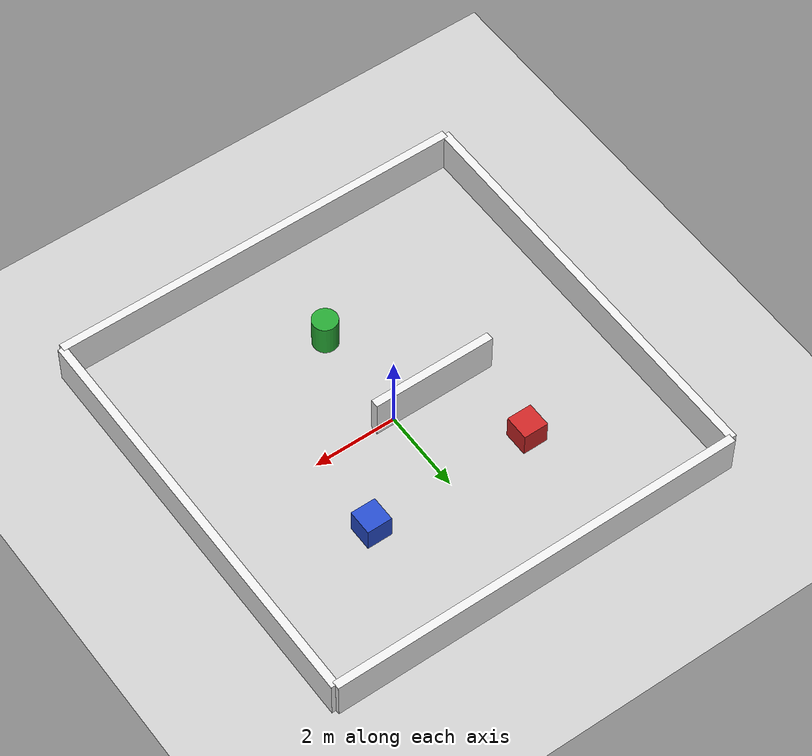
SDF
<?xml version="1.0" ?>
<sdf version="1.6">
  <world name="slam_world">

    <!-- Physics -->
    <physics type="ode">
      <real_time_update_rate>1000.0</real_time_update_rate>
      <max_step_size>0.001</max_step_size>
      <real_time_factor>1</real_time_factor>
    </physics>

    <!-- Plugins -->
    <plugin filename="libgazebo_ros_init.so"       name="gazebo_ros_init"/>
    <plugin filename="libgazebo_ros_factory.so"    name="gazebo_ros_factory"/>
    <plugin filename="libgazebo_ros_state.so"      name="gazebo_ros_state"/>

    <!-- Lighting -->
    <light name="sun" type="directional">
      <cast_shadows>true</cast_shadows>
      <pose>0 0 10 0 0 0</pose>
      <diffuse>0.8 0.8 0.8 1</diffuse>
      <specular>0.2 0.2 0.2 1</specular>
      <direction>-0.5 0.1 -0.9</direction>
    </light>

    <!-- Ground plane -->
    <model name="ground_plane">
      <static>true</static>
      <link name="link">
        <collision name="collision">
          <geometry><plane><normal>0 0 1</normal><size>100 100</size></plane></geometry>
        </collision>
        <visual name="visual">
          <geometry><plane><normal>0 0 1</normal><size>100 100</size></plane></geometry>
          <material>
            <script>
              <uri>file://media/materials/scripts/gazebo.material</uri>
              <name>Gazebo/Grey</name>
            </script>
          </material>
        </visual>
      </link>
    </model>

    <!-- ======  ROOM WALLS  ====== -->
    <!-- North wall -->
    <model name="wall_north">
      <static>true</static>
      <pose>0 5 0.5 0 0 0</pose>
      <link name="link">
        <collision name="collision"><geometry><box><size>10 0.2 1.0</size></box></geometry></collision>
        <visual name="visual">
          <geometry><box><size>10 0.2 1.0</size></box></geometry>
          <material><script><uri>file://media/materials/scripts/gazebo.material</uri><name>Gazebo/White</name></script></material>
        </visual>
      </link>
    </model>

    <!-- South wall -->
    <model name="wall_south">
      <static>true</static>
      <pose>0 -5 0.5 0 0 0</pose>
      <link name="link">
        <collision name="collision"><geometry><box><size>10 0.2 1.0</size></box></geometry></collision>
        <visual name="visual">
          <geometry><box><size>10 0.2 1.0</size></box></geometry>
          <material><script><uri>file://media/materials/scripts/gazebo.material</uri><name>Gazebo/White</name></script></material>
        </visual>
      </link>
    </model>

    <!-- East wall -->
    <model name="wall_east">
      <static>true</static>
      <pose>5 0 0.5 0 0 1.5708</pose>
      <link name="link">
        <collision name="collision"><geometry><box><size>10 0.2 1.0</size></box></geometry></collision>
        <visual name="visual">
          <geometry><box><size>10 0.2 1.0</size></box></geometry>
          <material><script><uri>file://media/materials/scripts/gazebo.material</uri><name>Gazebo/White</name></script></material>
        </visual>
      </link>
    </model>

    <!-- West wall -->
    <model name="wall_west">
      <static>true</static>
      <pose>-5 0 0.5 0 0 1.5708</pose>
      <link name="link">
        <collision name="collision"><geometry><box><size>10 0.2 1.0</size></box></geometry></collision>
        <visual name="visual">
          <geometry><box><size>10 0.2 1.0</size></box></geometry>
          <material><script><uri>file://media/materials/scripts/gazebo.material</uri><name>Gazebo/White</name></script></material>
        </visual>
      </link>
    </model>

    <!-- ====== OBSTACLES (for interesting SLAM map) ====== -->
    <!-- Box 1 -->
    <model name="obstacle_1">
      <static>true</static>
      <pose>2 2 0.3 0 0 0</pose>
      <link name="link">
        <collision name="collision"><geometry><box><size>0.6 0.6 0.6</size></box></geometry></collision>
        <visual name="visual">
          <geometry><box><size>0.6 0.6 0.6</size></box></geometry>
          <material><script><uri>file://media/materials/scripts/gazebo.material</uri><name>Gazebo/Blue</name></script></material>
        </visual>
      </link>
    </model>

    <!-- Box 2 -->
    <model name="obstacle_2">
      <static>true</static>
      <pose>-2 2 0.3 0 0 0</pose>
      <link name="link">
        <collision name="collision"><geometry><box><size>0.6 0.6 0.6</size></box></geometry></collision>
        <visual name="visual">
          <geometry><box><size>0.6 0.6 0.6</size></box></geometry>
          <material><script><uri>file://media/materials/scripts/gazebo.material</uri><name>Gazebo/Red</name></script></material>
        </visual>
      </link>
    </model>

    <!-- Cylinder -->
    <model name="obstacle_3">
      <static>true</static>
      <pose>0 -2.5 0.4 0 0 0</pose>
      <link name="link">
        <collision name="collision"><geometry><cylinder><radius>0.3</radius><length>0.8</length></cylinder></geometry></collision>
        <visual name="visual">
          <geometry><cylinder><radius>0.3</radius><length>0.8</length></cylinder></geometry>
          <material><script><uri>file://media/materials/scripts/gazebo.material</uri><name>Gazebo/Green</name></script></material>
        </visual>
      </link>
    </model>

    <!-- Inner wall segment -->
    <model name="inner_wall">
      <static>true</static>
      <pose>-1 0 0.5 0 0 0</pose>
      <link name="link">
        <collision name="collision"><geometry><box><size>3 0.2 1.0</size></box></geometry></collision>
        <visual name="visual">
          <geometry><box><size>3 0.2 1.0</size></box></geometry>
          <material><script><uri>file://media/materials/scripts/gazebo.material</uri><name>Gazebo/White</name></script></material>
        </visual>
      </link>
    </model>

  </world>
</sdf>
